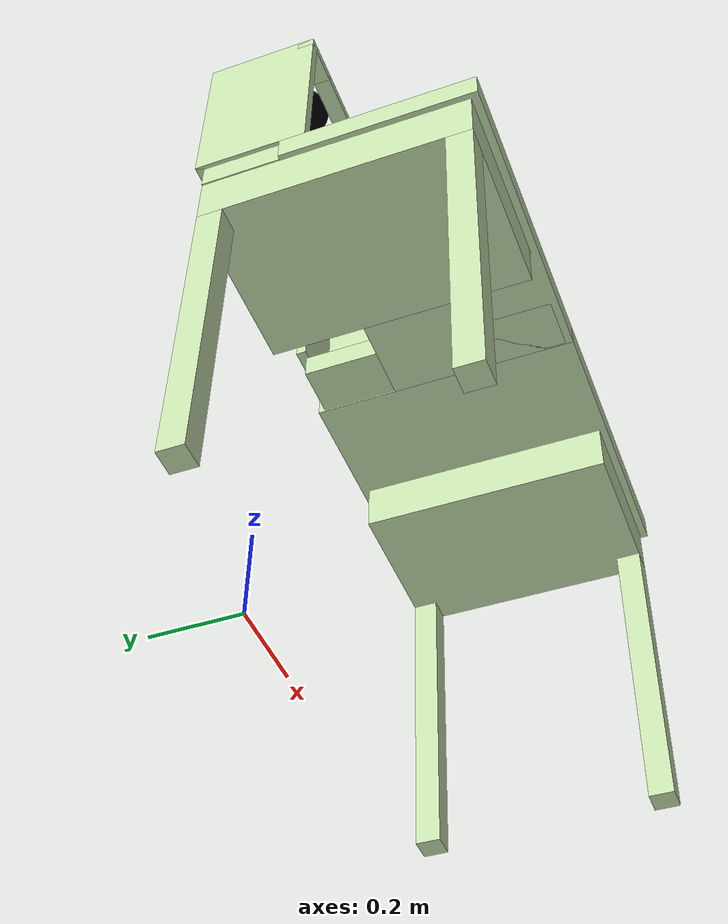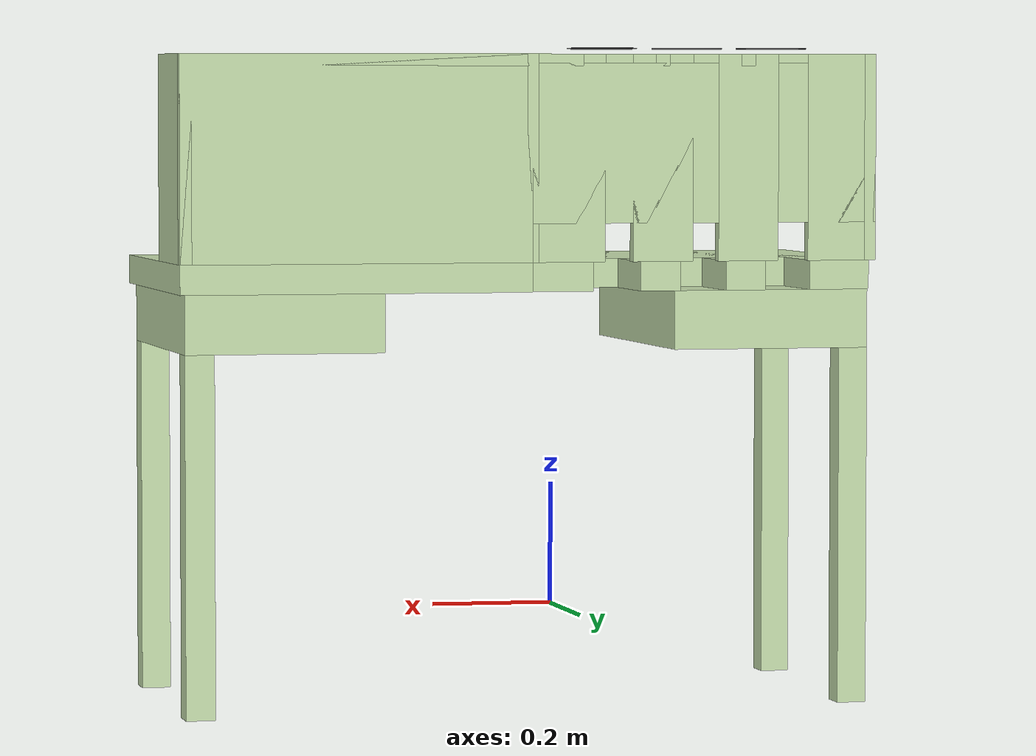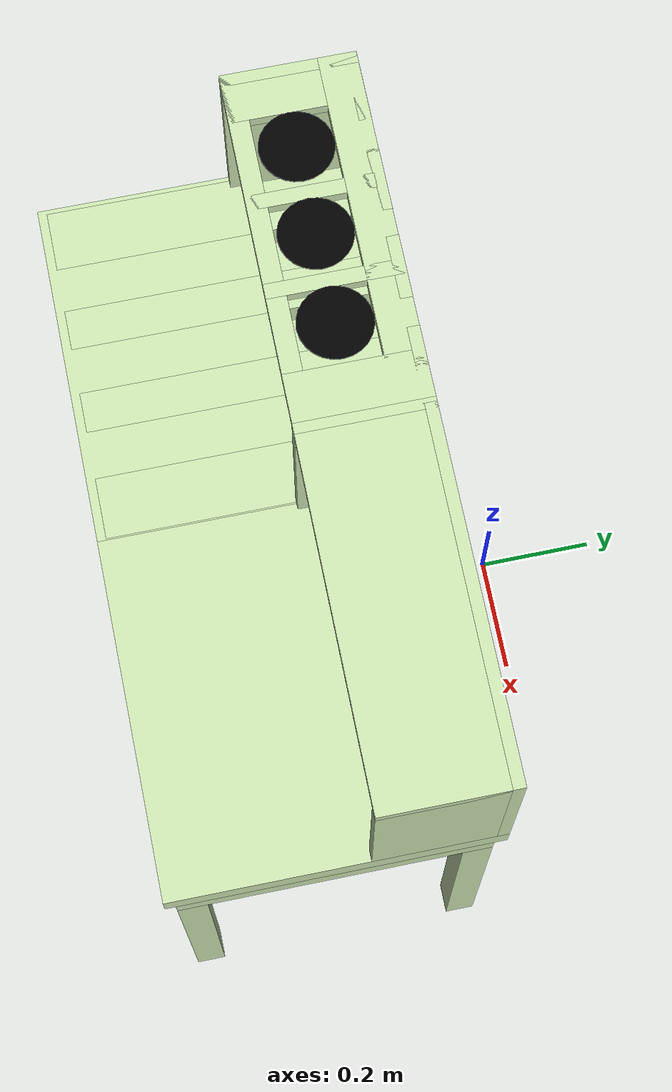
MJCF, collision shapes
<mujoco>
    <visual>
        <global offwidth="4072" offheight="2262" />
        <quality shadowsize="2048" offsamples="8" />
        <headlight diffuse="0.6 0.6 0.6" specular="0 0 0" />
        <map fogstart="6" znear="0.01" />
        <scale forcewidth="0.01" framelength="0.3" framewidth="0.01" />
    </visual>
    <default class="main1">
        <default class="viz_stl_Metal_LR">
            <geom type="mesh" group="1" material="M_Metal_LR" />
        </default>
        <default class="viz_stl_Wood_cube_LR">
            <geom type="mesh" group="1" material="M_Wood_cube_LR" />
        </default>
        <default class="viz_stl_Wood_2d_LR">
            <geom type="mesh" group="1" material="M_Wood_2d_LR" />
        </default>
        <default class="viz_stl_Fabric_cube_LR">
            <geom type="mesh" group="1" material="M_Fabric_cube_LR" />
        </default>
        <default class="viz_stl_Fabric_2d_LR">
            <geom type="mesh" group="1" material="M_Fabric_2d_LR" />
        </default>
        <default class="viz_stl_Painting_cube_LR">
            <geom type="mesh" group="1" material="M_Painting_cube_LR" />
        </default>
        <default class="viz_drawer">
            <joint limited="true" armature="0.1" damping="2" frictionloss="5" />
            <geom contype="0" group="3" rgba="1 0 0 1" />
        </default>
        <default class="viz_body">
            <joint limited="true" armature="0.01" damping="1" frictionloss="0.5" />
            <geom contype="0" group="4" rgba="0 1 0 1" />
        </default>
    </default>
    <asset>
        <texture type="cube" name="T_Wood_cube_LR" file="../playroom/textures/Surface_wood_chipboard.jpg.png" />
        <texture type="2d" name="T_Wood_2d_LR" file="../playroom/textures/Surface_wood_chipboard.jpg.png" />
        <texture type="cube" name="T_Metal_LR" file="../playroom/textures/Texture_P7220210.JPG.png" />
        <texture type="cube" name="T_Fabric_cube_LR" file="../playroom/textures/Blue_Gray_knit_texture.jpg.png" />
        <texture type="2d" name="T_Fabric_2d_LR" file="../playroom/textures/Fabric_length_(AM_842431-1).jpg.png" />
        <texture type="cube" name="T_Painting_cube_LR" file="../playroom/textures/Coloured,_textured_craft_card_edit.jpg.png" />
        <texture type="2d" name="groundplane" builtin="checker" rgb1="0.2 0.3 0.4" rgb2="0.1 0.2 0.3" width="200" height="200" />
        <texture type="skybox" name="skybox" builtin="gradient" mark="random" rgb1="0.4 0.6 0.8" rgb2="0 0 0" markrgb="1 1 1" width="800" height="4800" />
        <material name="M_Fabric_cube_LR" texture="T_Fabric_cube_LR" shininess="0" />
        <material name="M_Fabric_2d_LR" texture="T_Fabric_2d_LR" texuniform="true" texrepeat="3 3" shininess="0" rgba="0.2 0.2 0.2 1" />
        <material name="groundplane" texture="groundplane" texrepeat="20 20" />
        <material name="M_Wood_cube_LR" texture="T_Wood_cube_LR" shininess="0.2" reflectance="0.3" rgba="0.8 0.8 0.8 1" />
        <material name="M_Wood_2d_LR" texture="T_Wood_2d_LR" shininess="0.2" reflectance="0.3" rgba="0.8 0.8 0.8 1" />
        <material name="M_Metal_LR" texture="T_Metal_LR" texrepeat="3 3" reflectance="0.7" />
        <material name="M_Painting_cube_LR" texture="T_Painting_cube_LR" shininess="0.2" reflectance="0.3" />
        <material name="MatViz" specular="1" shininess="0.1" reflectance="0.5" rgba="0.07 0.07 0.1 1" />
        <mesh name="SSC_Body" file="../playroom/meshes//SSC_Body.stl" scale="0.01 0.01 0.01" />
        <mesh name="SSC_Stand" file="../playroom/meshes//SSC_Stand.stl" scale="0.01 0.01 0.01" />
        <mesh name="Table_Top" file="../playroom/meshes//Table_Top.stl" scale="0.01 0.01 0.01" />
        <mesh name="Table_Bottom" file="../playroom/meshes//Table_Bottom.stl" scale="0.01 0.01 0.01" />
        <mesh name="Doorway_Top" file="../playroom/meshes//Doorway_Top.stl" scale="0.01 0.01 0.01" />
        <mesh name="Doorway_Bottom" file="../playroom/meshes//Doorway_Bottom.stl" scale="0.01 0.01 0.01" />
        <mesh name="Window_Top" file="../playroom/meshes//Window_Top.stl" scale="0.01 0.01 0.01" />
        <mesh name="Window_Bottom" file="../playroom/meshes//Window_Bottom.stl" scale="0.01 0.01 0.01" />
        <mesh name="Wall_Top" file="../playroom/meshes//Wall_Top.stl" scale="0.01 0.01 0.01" />
        <mesh name="Wall_Bottom" file="../playroom/meshes//Wall_Bottom.stl" scale="0.01 0.01 0.01" />
        <mesh name="Lamp_Top" file="../playroom/meshes//Lamp_Top.stl" scale="0.01 0.01 0.01" />
        <mesh name="Lamp_Stand" file="../playroom/meshes//Lamp_Stand.stl" scale="0.01 0.01 0.01" />
        <mesh name="Painting_Canvas" file="../playroom/meshes//Painting_Canvas.stl" scale="0.01 0.01 0.01" />
        <mesh name="Painting_Frame" file="../playroom/meshes//Painting_Frame.stl" scale="0.01 0.01 0.01" />
        <mesh name="StudyTable" file="../playroom/meshes//StudyTable.stl" scale="0.01 0.01 0.01" />
        <mesh name="Drawer_Wood" file="../playroom/meshes//Drawer_Wood.stl" scale="0.01 0.01 0.01" />
        <mesh name="Drawer_Handle" file="../playroom/meshes//Drawer_Handle.stl" scale="0.01 0.01 0.01" />
        <mesh name="Slide_Wood" file="../playroom/meshes//Slide_Wood.stl" scale="0.01 0.01 0.01" />
        <mesh name="Slide_Handle" file="../playroom/meshes//Slide_Handle.stl" scale="0.01 0.01 0.01" />
        <mesh name="BlockBin" file="../playroom/meshes//BlockBin.stl" scale="0.01 0.01 0.01" />
    </asset>
    <worldbody>
        <body name="StudyTable" childclass="viz_body" pos="0 -0.4 -0.2">
            <inertial pos="-0.0105241 0.0769411 0.760166" quat="0.584517 0.394281 0.595861 0.384489" mass="554.518" diaginertia="108.365 86.7491 39.9742" />
            <geom class="viz_stl_Wood_cube_LR" quat="0.000563312 -0.000562864 0.706825 0.707388" contype="0" conaffinity="0" mesh="StudyTable" />
            <geom size="0.3 0.275 0.025" pos="0.3 0 0.735" type="box" rgba="0.8 0.9 0.7 1" />
            <geom size="0.17 0.26 0.05" pos="0.42 0 0.66" type="box" rgba="0.8 0.9 0.7 1" />
            <geom size="0.17 0.26 0.05" pos="-0.42 0 0.66" type="box" rgba="0.8 0.9 0.7 1" />
            <geom size="0.025 0.025 0.305" pos="-0.565 0.235 0.305" type="box" rgba="0.8 0.9 0.7 1" />
            <geom size="0.025 0.025 0.305" pos="-0.565 -0.235 0.305" type="box" rgba="0.8 0.9 0.7 1" />
            <geom size="0.025 0.025 0.305" pos="0.565 0.235 0.305" type="box" rgba="0.8 0.9 0.7 1" />
            <geom size="0.025 0.025 0.305" pos="0.565 -0.235 0.305" type="box" rgba="0.8 0.9 0.7 1" />
            <geom size="0.3 0.01 0.175" pos="0.3 0.265 0.935" type="box" rgba="0.8 0.9 0.7 1" />
            <geom size="0.3 0.11 0.01" pos="0.3 0.165 1.1" type="box" rgba="0.8 0.9 0.7 1" />
            <geom size="0.01 0.11 0.175" pos="0.59 0.165 0.935" type="box" rgba="0.8 0.9 0.7 1" />
            <geom size="0.01 0.11 0.175" pos="-0.59 0.165 0.935" type="box" rgba="0.8 0.9 0.7 1" />
            <geom size="0.01 0.11 0.175" pos="0 0.165 0.935" type="box" rgba="0.8 0.9 0.7 1" />
            <geom size="0.3 0.19 0.025" pos="-0.3 -0.085 0.735" type="box" rgba="0.8 0.9 0.7 1" />
            <geom size="0.0525 0.26 0.025" pos="-0.055 0 0.735" type="box" rgba="0.8 0.9 0.7 1" />
            <geom size="0.035 0.26 0.025" pos="-0.225 0 0.735" type="box" rgba="0.8 0.9 0.7 1" />
            <geom size="0.035 0.26 0.025" pos="-0.375 0 0.735" type="box" rgba="0.8 0.9 0.7 1" />
            <geom size="0.0525 0.26 0.025" pos="-0.54 0 0.735" type="box" rgba="0.8 0.9 0.7 1" />
            <geom size="0.06 0.01 0.175" pos="-0.065 0.265 0.935" type="box" rgba="0.8 0.9 0.7 1" />
            <geom size="0.0525 0.01 0.175" pos="-0.22535 0.265 0.935" type="box" rgba="0.8 0.9 0.7 1" />
            <geom size="0.0525 0.01 0.175" pos="-0.375 0.265 0.935" type="box" rgba="0.8 0.9 0.7 1" />
            <geom size="0.06 0.01 0.175" pos="-0.54 0.265 0.935" type="box" rgba="0.8 0.9 0.7 1" />
            <geom size="0.3 0.01 0.135" pos="-0.3 0.265 0.96" type="box" rgba="0.8 0.9 0.7 1" />
            <geom size="0.04 0.11 0.01" pos="-0.0475 0.165 1.1" type="box" rgba="0.8 0.9 0.7 1" />
            <geom size="0.0125 0.11 0.01" pos="-0.225 0.165 1.1" type="box" rgba="0.8 0.9 0.7 1" />
            <geom size="0.0125 0.11 0.01" pos="-0.375 0.165 1.1" type="box" rgba="0.8 0.9 0.7 1" />
            <geom size="0.04 0.11 0.01" pos="-0.555 0.165 1.1" type="box" rgba="0.8 0.9 0.7 1" />
            <geom size="0.3 0.01625 0.01" pos="-0.3 0.07125 1.1" type="box" rgba="0.8 0.9 0.7 1" />
            <geom size="0.3 0.03125 0.01" pos="-0.3 0.2435 1.1" type="box" rgba="0.8 0.9 0.7 1" />
            <geom size="0.06 0.001" pos="-0.15 0.15 1.12" type="cylinder" conaffinity="0" group="1" rgba="0 0 0 1" />
            <geom size="0.06 0.001" pos="-0.3 0.15 1.12" type="cylinder" conaffinity="0" group="1" rgba="0 0 0 1" />
            <geom size="0.06 0.001" pos="-0.45 0.15 1.12" type="cylinder" conaffinity="0" group="1" rgba="0 0 0 1" />
        </body>
    </worldbody>
</mujoco>
